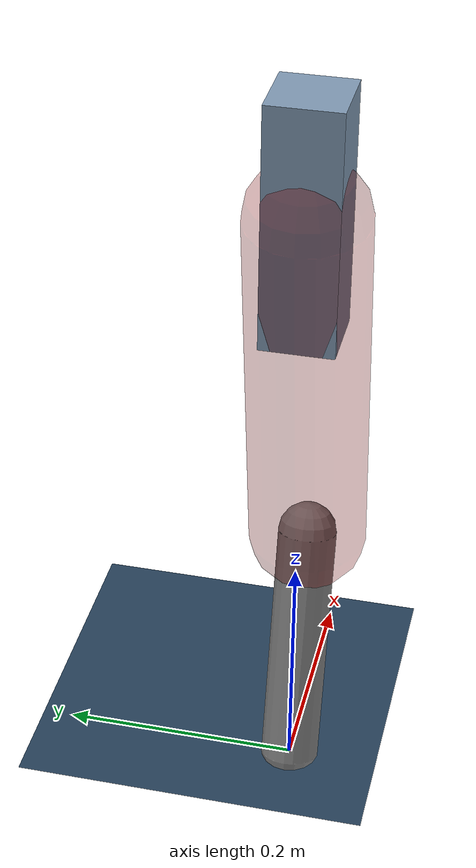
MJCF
<mujoco model="Hopper2D">
	<compiler inertiafromgeom="true" angle="radian" />
	<option timestep="0.001" integrator="implicit" cone="elliptic" solver="Newton" tolerance="1e-10" />

	<default>
		<geom contype="1" conaffinity="1" condim="3" friction="2 0.005 0.0001" solref="0.005 1" />
		<joint limited="true" damping="0.1" />
	</default>

	<asset>
		<texture name="skybox" type="skybox" builtin="gradient" rgb1=".4 .6 .8" rgb2="0 0 0" width="800" height="800" />
		<texture name="grid" type="2d" builtin="checker" rgb1=".1 .2 .3" rgb2=".2 .3 .4" width="300" height="300" mark="edge" markrgb=".2 .3 .4" />
		<material name="ground" texture="grid" texrepeat="1 1" texuniform="true" reflectance="0.1" />
		<material name="leg" rgba="0.5 0.6 0.7 1" />
	</asset>

	<worldbody>

		<geom name="floor" type="plane" size="5 5 0.25" material="ground" />

		<light directional="false" diffuse="0.8 0.8 0.8" specular="0.3 0.3 0.3" pos="0 0 2" dir="0 0 -1" />
		<light mode="targetbodycom" target="base" directional="false" diffuse="0.8 0.8 0.8" specular="0.3 0.3 0.3" pos="0 0 2" dir="0 0 -1" />

		<camera name="fixed" pos="0 -2 1" xyaxes="1 0 0 0 0 1" />
		<camera name="tracking" mode="trackcom" pos="0 -3 1" />

		<body name="root" pos="0 0 0.528228191861627">
			<joint name="slide_x" type="slide" axis="1 0 0" range="-100 100" />
			<joint name="slide_z" type="slide" axis="0 0 1" range="0 10" />

			<body name="base" pos="0 0 0">
				<geom name="torso" type="box" size="0.03 0.03 0.1" mass="2.3209999999999997" material="leg" />

				<body name="link1" pos="0 0 0" euler="0 1.41531372529035 0">
					<joint type="hinge" axis="0 -1 0" pos="0 0 0" name="hinge1" limited="true" range="-3.14 3.14" stiffness="0" damping="0.1" />
					<geom name="thigh" type="capsule" fromto="0 0 0 0.3256939462043792 0 0" size="0.05" rgba="0.5 0 0 0.3" mass="1.0589430493722618" />

					<body name="link2" pos="0.3256939462043792 0 0" euler="0 0.395075755738253 0">
						<joint type="hinge" axis="0 -1 0" pos="0 0 0" name="hinge2" limited="true" range="-3.14 3.14" stiffness="0" damping="0.1" />
						<geom name="shank" type="capsule" fromto="0 0 0 0.21253424565724777 0 0" size="0.025" mass="0.4114273965257982" />

					</body>
				</body>
			</body>
		</body>
	</worldbody>

	<actuator>
		<motor name="torque1" joint="hinge1" ctrlrange="-78.12672399314404 78.12672399314404" ctrllimited="true" gear="1" />
		<motor name="torque2" joint="hinge2" ctrlrange="-78.07046388768025 78.07046388768025" ctrllimited="true" gear="1" />
	</actuator>
</mujoco>
